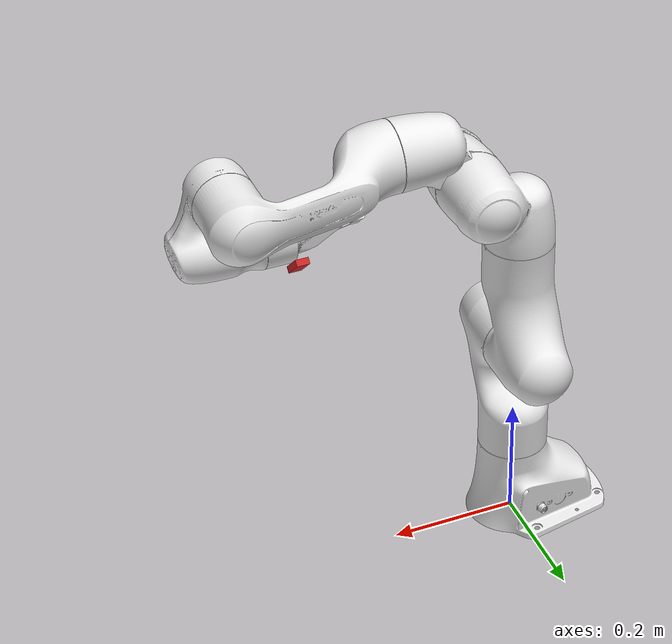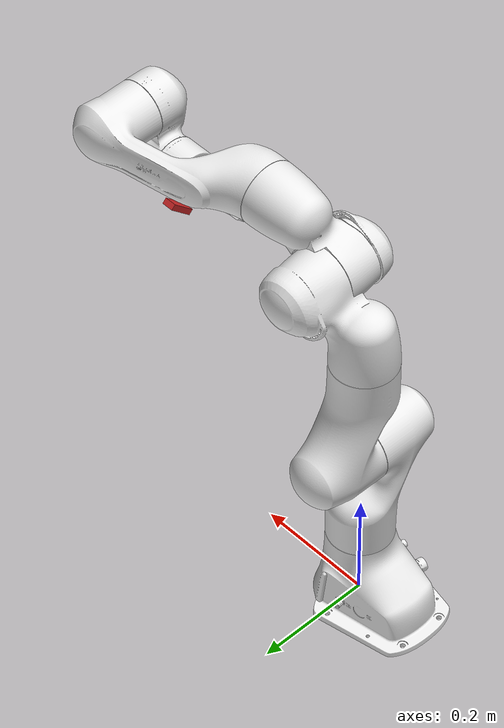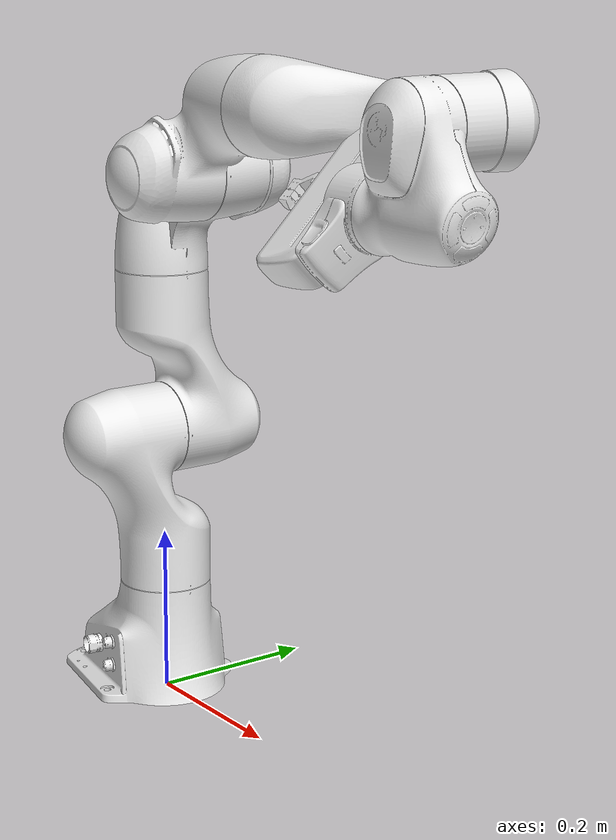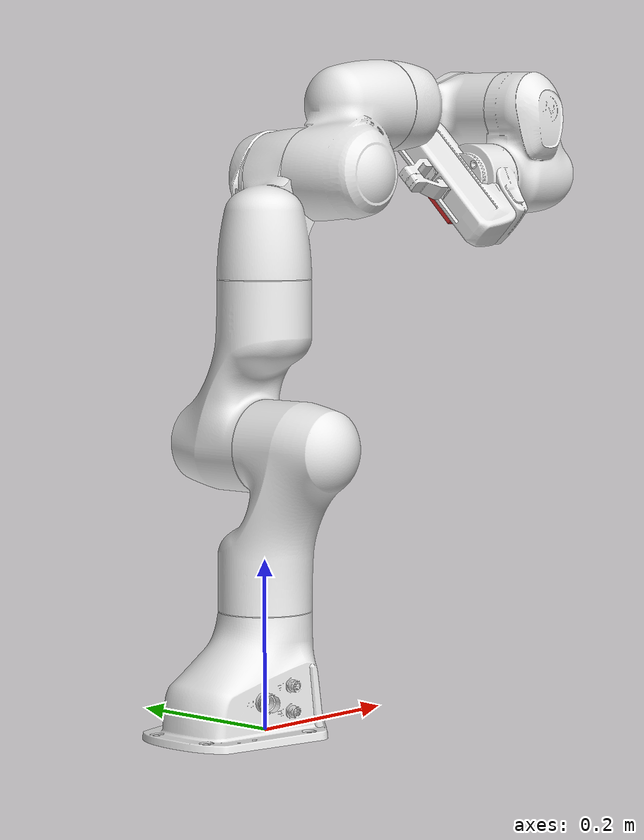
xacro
<?xml version='1.0' encoding='utf-8'?>
<robot xmlns:xacro="http://www.ros.org/wiki/xacro" name="panda">
  <xacro:arg name="arm_id" default="panda"/> <!-- Name of this panda -->
  <xacro:arg name="hand" default="true"/> <!-- Should a franka_gripper be mounted at the flange?" -->
  <xacro:arg name="camera" default="true"/> <!-- Should a franka_gripper be mounted at the flange?" -->

  <link name="world"/>

  <xacro:include filename="$(find franka_gazebo)/urdf/panda_arm.xacro"/>
  <xacro:panda_arm arm_id="$(arg arm_id)" safety_distance="0.03" connected_to="world" description_pkg="franka_gazebo"/>

  <xacro:if value="$(arg hand)">
    <xacro:include filename="$(find franka_gazebo)/urdf/hand.xacro"/>
    <xacro:hand ns="$(arg arm_id)" rpy="0 0 ${-pi/4}" connected_to="$(arg arm_id)_link8" safety_distance="0.03" description_pkg="franka_gazebo"/>
  </xacro:if>

  <xacro:include filename="$(find franka_gazebo)/urdf/panda_arm.gazebo_ros2_control.xacro"/>
  <xacro:panda_arm_gazebo_ros2_control ns="$(arg arm_id)" hand="$(arg hand)" camera="$(arg camera)"/>

</robot>

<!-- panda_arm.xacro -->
<robot xmlns:xacro="http://www.ros.org/wiki/xacro" name="panda">
  <!-- safety_distance: Minimum safety distance in [m] by which the collision volumes are expanded and which is enforced during robot motions -->
  <!-- arm_id: Namespace of the panda arm. Serves to differentiate between arms in case of multiple instances. -->
  <xacro:macro name="panda_arm" params="arm_id:='panda' description_pkg:='franka_description' connected_to:='' xyz:='0 0 0' rpy:='0 0 0' safety_distance:=0">
    <xacro:unless value="${not connected_to}">
      <joint name="${arm_id}_joint_${connected_to}" type="fixed">
        <parent link="${connected_to}"/>
        <child link="${arm_id}_link0"/>
        <origin rpy="${rpy}" xyz="${xyz}"/>
      </joint>
    </xacro:unless>

    <!-- for simulation -->
    <xacro:property name="joint_damping" value="5.0"/>
    <!-- end for simulation -->

    <link name="${arm_id}_link0">
      <visual>
        <geometry>
          <mesh filename="package://${description_pkg}/meshes/visual/link0.dae"/>
        </geometry>
      </visual>
      <collision>
        <geometry>
          <mesh filename="package://${description_pkg}/meshes/collision/link0.stl"/>
        </geometry>
      </collision>
      <!--for simulation -->
      <inertial>
        <origin xyz="-0.025566 -2.87883e-05 0.057332" rpy="0 0 0"/>
        <mass value="0.2814271300104062"/>
        <inertia ixx="0.0001" ixy="0.000"  ixz="0.000"
         iyy="0.0001" iyz="0.000"
         izz="0.0001" />
        <!--inertia ixx="0.0075390636364814695" iyy="0.010508017427382959" izz="0.009864933638708275" ixy="-1.5053124574783335e-05" ixz="-0.0012144328835738973" iyz="1.0434803501032979e-05"/-->
      </inertial>
      <!--for simulation -->
    </link>

    <link name="${arm_id}_link1">
      <visual>
        <geometry>
          <mesh filename="package://${description_pkg}/meshes/visual/link1.dae"/>
        </geometry>
      </visual>
      <collision>
        <geometry>
          <mesh filename="package://${description_pkg}/meshes/collision/link1.stl"/>
        </geometry>
      </collision>
      <!-- for simulation -->
      <inertial>
        <origin xyz="-3.72212e-09 -0.0324958 -0.0675818" rpy="0 0 0"/>
        <mass value="0.26433170427227215"/>
        <inertia ixx="0.0001" ixy="0.000"  ixz="0.000"
         iyy="0.0001" iyz="0.000"
         izz="0.0001" />
        <!--inertia ixx="0.017405076982879724" iyy="0.015352077935781732" izz="0.005987891663073857" ixy="-8.687986369621078e-09" ixz="1.6277819062920423e-08" iyz="0.004510855959102245"/-->
      </inertial>
      <!-- end for simulation -->
    </link>

    <joint name="${arm_id}_joint1" type="revolute">
      <safety_controller k_position="100.0" k_velocity="40.0" soft_lower_limit="-2.8973" soft_upper_limit="2.8973"/>
      <origin rpy="0 0 0" xyz="0 0 0.333"/>
      <parent link="${arm_id}_link0"/>
      <child link="${arm_id}_link1"/>
      <axis xyz="0 0 1"/>
      <limit effort="87" lower="-2.8973" upper="2.8973" velocity="2.1750"/>
      <!-- for simulation -->
      <dynamics damping="${joint_damping}" friction="0.546"/>
      <!-- end for simulation -->
    </joint>

    <link name="${arm_id}_link2">
      <visual>
        <geometry>
          <mesh filename="package://${description_pkg}/meshes/visual/link2.dae"/>
        </geometry>
      </visual>
      <collision>
        <geometry>
          <mesh filename="package://${description_pkg}/meshes/collision/link2.stl"/>
        </geometry>
      </collision>
      <!-- for simulation -->
      <inertial>
        <origin xyz="3.17833e-07 -0.06861 0.0322285" rpy="0 0 0"/>
        <mass value="0.26652755331661186"/>
        <inertia ixx="0.0001" ixy="0.000"  ixz="0.000"
         iyy="0.0001" iyz="0.000"
         izz="0.0001" />
        <!--inertia ixx="0.01778694005635383" iyy="0.006044133867952844" izz="0.01571095500455695" ixy="8.70635625879119e-08" ixz="3.752072058394008e-08" iyz="-0.004599490295490376"/-->
      </inertial>
      <!-- end for simulation -->
    </link>

    <joint name="${arm_id}_joint2" type="revolute">
      <safety_controller k_position="100.0" k_velocity="40.0" soft_lower_limit="-1.7628" soft_upper_limit="1.7628"/>
      <origin rpy="${-pi/2} 0 0" xyz="0 0 0"/>
      <parent link="${arm_id}_link1"/>
      <child link="${arm_id}_link2"/>
      <axis xyz="0 0 1"/>
      <limit effort="87" lower="-1.7628" upper="1.7628" velocity="2.1750"/>
      <!-- for simulation -->
      <dynamics damping="${joint_damping}" friction="0.87224"/>
      <!-- end for simulation -->
    </joint>

    <link name="${arm_id}_link3">
      <visual>
        <geometry>
          <mesh filename="package://${description_pkg}/meshes/visual/link3.dae"/>
        </geometry>
      </visual>
      <collision>
        <geometry>
          <mesh filename="package://${description_pkg}/meshes/collision/link3.stl"/>
        </geometry>
      </collision>
      <!-- for simulation -->
      <inertial>
        <origin xyz="0.0469893 0.0316374 -0.031704" rpy="0 0 0"/>
        <mass value="0.23293714829045733"/>
        <inertia ixx="0.0001" ixy="0.000"  ixz="0.000"
         iyy="0.0001" iyz="0.000"
         izz="0.0001" />
        <!--inertia ixx="0.0075496764161139766" iyy="0.009680676080191398" izz="0.007944557422008086" ixy="-0.0024320464513492225" ixz="-0.003250815048103007" iyz="-0.0021316282421730694"/-->
      </inertial>
      <!-- end for simulation -->
    </link>

    <joint name="${arm_id}_joint3" type="revolute">
      <safety_controller k_position="100.0" k_velocity="40.0" soft_lower_limit="-2.8973" soft_upper_limit="2.8973"/>
      <origin rpy="${pi/2} 0 0" xyz="0 -0.316 0"/>
      <parent link="${arm_id}_link2"/>
      <child link="${arm_id}_link3"/>
      <axis xyz="0 0 1"/>
      <limit effort="87" lower="-2.8973" upper="2.8973" velocity="2.1750"/>
      <!-- for simulation -->
      <dynamics damping="${joint_damping}" friction="0.6406"/>
      <!-- end for simulation -->
    </joint>

    <link name="${arm_id}_link4">
      <visual>
        <geometry>
          <mesh filename="package://${description_pkg}/meshes/visual/link4.dae"/>
        </geometry>
      </visual>
      <collision>
        <geometry>
          <mesh filename="package://${description_pkg}/meshes/collision/link4.stl"/>
        </geometry>
      </collision>
      <!-- for simulation -->
      <inertial>
        <origin xyz="-0.0360505 0.0337069 0.0319019" rpy="0 0 0"/>
        <mass value="0.23104763646281508"/>
        <inertia ixx="0.0001" ixy="0.000"  ixz="0.000"
         iyy="0.0001" iyz="0.000"
         izz="0.0001" />
        <!--inertia ixx="0.007764568814864828" iyy="0.008015776929980149" izz="0.009955882308071066" ixy="0.003371475204045935" ixz="-0.002343621113168248" iyz="0.0022917526161470624"/-->
      </inertial>
      <!-- end for simulation -->
    </link>

    <joint name="${arm_id}_joint4" type="revolute">
      <safety_controller k_position="100.0" k_velocity="40.0" soft_lower_limit="-3.0718" soft_upper_limit="-0.0698"/>
      <origin rpy="${pi/2} 0 0" xyz="0.0825 0 0"/>
      <parent link="${arm_id}_link3"/>
      <child link="${arm_id}_link4"/>
      <axis xyz="0 0 1"/>
      <limit effort="87" lower="-3.0718" upper="-0.0698" velocity="2.1750"/>
      <!-- for simulation -->
      <dynamics damping="${joint_damping}" friction="1.2794"/>
      <!-- end for simulation -->
    </joint>

    <link name="${arm_id}_link5">
      <visual>
        <geometry>
          <mesh filename="package://${description_pkg}/meshes/visual/link5.dae"/>
        </geometry>
      </visual>
      <collision>
        <geometry>
          <mesh filename="package://${description_pkg}/meshes/collision/link5.stl"/>
        </geometry>
      </collision>
      <!-- for simulation -->
      <inertial>
        <origin xyz="-6.12525e-06 0.0610427 -0.104176" rpy="0 0 0"/>
        <mass value="0.26226426154892004"/>
        <inertia ixx="0.0001" ixy="0.000"  ixz="0.000"
         iyy="0.0001" iyz="0.000"
         izz="0.0001" />
        <!--inertia ixx="0.029070538014399377" iyy="0.027638529986528795" izz="0.004251111234400737" ixy="6.208738268725568e-07" ixz="-1.0059151925023392e-05" iyz="-0.007424306477850814"/-->
      </inertial>
      <!-- end for simulation -->
    </link>

    <joint name="${arm_id}_joint5" type="revolute">
      <safety_controller k_position="100.0" k_velocity="40.0" soft_lower_limit="-2.8973" soft_upper_limit="2.8973"/>
      <origin rpy="${-pi/2} 0 0" xyz="-0.0825 0.384 0"/>
      <parent link="${arm_id}_link4"/>
      <child link="${arm_id}_link5"/>
      <axis xyz="0 0 1"/>
      <limit effort="12" lower="-2.8973" upper="2.8973" velocity="2.6100"/>
      <!-- for simulation -->
      <dynamics damping="3.0" friction="0.839"/>
      <!-- end for simulation -->
    </joint>

    <link name="${arm_id}_link6">
      <visual>
        <geometry>
          <mesh filename="package://${description_pkg}/meshes/visual/link6.dae"/>
        </geometry>
      </visual>
      <collision>
        <geometry>
          <mesh filename="package://${description_pkg}/meshes/collision/link6.stl"/>
        </geometry>
      </collision>
      <!-- for simulation -->
      <inertial>
        <origin xyz="0.051051 0.00910797 0.0106343" rpy="0 0 0"/>
        <mass value="0.15025804886626795"/>
        <inertia ixx="0.0001" ixy="0.000"  ixz="0.000"
         iyy="0.0001" iyz="0.000"
         izz="0.0001" />
        <!--inertia ixx="0.002940555801469018" iyy="0.00392105201248677" izz="0.0054115603870960195" ixy="-0.00042391108351381507" ixz="0.000610007735338717" iyz="0.00012647545430836214"/-->
      </inertial>
      <!-- end for simulation -->
    </link>

    <joint name="${arm_id}_joint6" type="revolute">
      <safety_controller k_position="100.0" k_velocity="40.0" soft_lower_limit="-0.0175" soft_upper_limit="3.7525"/>
      <origin rpy="${pi/2} 0 0" xyz="0 0 0"/>
      <parent link="${arm_id}_link5"/>
      <child link="${arm_id}_link6"/>
      <axis xyz="0 0 1"/>
      <limit effort="12" lower="-0.0175" upper="3.7525" velocity="2.6100"/>
      <!-- for simulation -->
      <dynamics damping="3.0" friction="0.303"/>
      <!-- end for simulation -->
    </joint>

    <link name="${arm_id}_link7">
      <visual>
        <geometry>
          <mesh filename="package://${description_pkg}/meshes/visual/link7.dae"/>
        </geometry>
      </visual>
      <collision>
        <geometry>
          <mesh filename="package://${description_pkg}/meshes/collision/link7.stl"/>
        </geometry>
      </collision>
      <!-- for simulation -->
      <inertial>
        <origin xyz="0.0109695 0.0107965 0.0650412" rpy="0 0 0"/>
        <mass value="0.05237668134788256"/>
        <!--inertia ixx="0.00001" ixy="0.000"  ixz="0.000"
         iyy="0.00001" iyz="0.000"
         izz="0.00001" /-->
        <inertia ixx="0.0008621467959726535" iyy="0.0008613100184801048" izz="0.0009961139396618219" ixy="-0.000011871071570425467" ixz="3.866602604509339e-06" iyz="-9.057841649422724e-06"/>
      </inertial>
      <!-- end for simulation -->
    </link>

    <joint name="${arm_id}_joint7" type="revolute">
      <!--safety_controller k_position="100.0" k_velocity="40.0" soft_lower_limit="-2.8973" soft_upper_limit="2.8973"/-->
      <origin rpy="${pi/2} 0 0" xyz="0.088 0 0"/>
      <parent link="${arm_id}_link6"/>
      <child link="${arm_id}_link7"/>
      <axis xyz="0 0 1"/>
      <limit effort="12" lower="-2.8973" upper="2.8973" velocity="2.6100"/>
      <!-- for simulation -->
      <dynamics damping="3.0" friction="0.05649"/>
      <!-- end for simulation -->
    </joint>

    <link name="${arm_id}_link8">
      <!-- for simulation -->
      <inertial>
        <origin xyz="0.0 0.0 0.0" rpy="0 0 0"/>
        <mass value="0.001"/>
        <inertia ixx="0.00001" ixy="0.000"  ixz="0.000"
         iyy="0.00001" iyz="0.000"
         izz="0.00001" />
      </inertial>
    </link>
    <joint name="${arm_id}_joint8" type="fixed">
      <origin rpy="0 0 0" xyz="0 0 0.0"/>
      <parent link="${arm_id}_link7"/>
      <child link="${arm_id}_link8"/>
    </joint>

  </xacro:macro>
</robot>

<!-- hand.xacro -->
<robot xmlns:xacro="http://www.ros.org/wiki/xacro" name="hand">
  <!-- safety_distance: Minimum safety distance in [m] by which the collision volumes are expanded and which is enforced during robot motions -->
  <xacro:macro name="hand" params="connected_to:='' ns:='' description_pkg:='franka_description' rpy:='0 0 0' xyz:='0 0 0.1' safety_distance:=0">
    <xacro:unless value="${connected_to == ''}">
      <joint name="${ns}_hand_joint" type="fixed">
        <parent link="${connected_to}"/>
        <child link="${ns}_hand"/>
        <origin xyz="${xyz}" rpy="${rpy}"/>
      </joint>
    </xacro:unless>
    <link name="${ns}_hand">
      <visual>
        <geometry>
          <mesh filename="package://${description_pkg}/meshes/visual/hand.dae"/>
        </geometry>
      </visual>
      <collision>
        <geometry>
          <mesh filename="package://${description_pkg}/meshes/collision/hand.stl"/>
        </geometry>
      </collision>
      <inertial>
        <origin xyz="-6.7624e-06 0.00152435 0.0275912" rpy="0 0 0"/>
        <mass value="0.14060765127978503"/>
        <inertia ixx="0.0001" ixy="0.000"  ixz="0.000"
         iyy="0.0001" iyz="0.000"
         izz="0.0001" />
        <!--inertia ixx="0.0005365450414352072" iyy="7.70511954783727e-05" izz="0.0004938176882694914" ixy="1.7911952957732454e-08" ixz="-2.320071910601251e-08" iyz="4.681149945315967e-08"/-->
      </inertial>
    </link>
    <!-- Define the hand_tcp frame -->
    <link name="${ns}_hand_tcp"/>
    <joint name="${ns}_hand_tcp_joint" type="fixed">
      <origin xyz="0 0 0.1034" rpy="0 0 0"/>
      <parent link="${ns}_hand"/>
      <child link="${ns}_hand_tcp"/>
    </joint>
    <link name="${ns}_leftfinger">
      <visual>
        <geometry>
          <mesh filename="package://${description_pkg}/meshes/visual/finger.dae"/>
        </geometry>
      </visual>
      <collision>
        <geometry>
          <mesh filename="package://${description_pkg}/meshes/collision/finger.stl"/>
        </geometry>
      </collision>
      <inertial>
        <origin xyz="-6.2561e-06 0.00227781 -0.0277116" rpy="0 0 0"/>
        <mass value="0.2238453537819424"/>
        <inertia ixx="6.74804167363695e-05" iyy="6.627189221641395e-05" izz="1.550396267804825e-05" ixy="-4.1027443646025676e-09" ixz="1.8693673970152995e-08" iyz="1.1967548474390802e-05"/>
      </inertial>
    </link>
    <link name="${ns}_rightfinger">
      <visual>
        <origin xyz="0 0 0" rpy="0 0 ${pi}"/>
        <geometry>
          <mesh filename="package://${description_pkg}/meshes/visual/finger.dae"/>
        </geometry>
      </visual>
      <collision>
        <origin xyz="0 0 0" rpy="0 0 ${pi}"/>
        <geometry>
          <mesh filename="package://${description_pkg}/meshes/collision/finger.stl"/>
        </geometry>
      </collision>
      <inertial>
        <origin xyz="-6.2561e-06 0.00227781 -0.0277116" rpy="0 0 0"/>
        <mass value="0.2238453537819424"/>
        <inertia ixx="6.74804167363695e-05" iyy="6.627189221641395e-05" izz="1.550396267804825e-05" ixy="-4.1027443646025676e-09" ixz="1.8693673970152995e-08" iyz="1.1967548474390802e-05"/>
      </inertial>
    </link>
    <joint name="${ns}_finger_joint1" type="prismatic">
      <parent link="${ns}_hand"/>
      <child link="${ns}_leftfinger"/>
      <origin xyz="0 0 0.0584" rpy="0 0 0"/>
      <axis xyz="0 1 0"/>
      <limit effort="20" lower="0.0" upper="0.04" velocity="0.2"/>
      <dynamics damping="3.0" friction="0.546"/>
    </joint>
    <joint name="${ns}_finger_joint2" type="prismatic">
      <parent link="${ns}_hand"/>
      <child link="${ns}_rightfinger"/>
      <origin xyz="0 0 0.0584" rpy="0 0 0"/>
      <axis xyz="0 -1 0"/>
      <limit effort="20" lower="0.0" upper="0.04" velocity="0.2"/>
      <mimic joint="${ns}_finger_joint1"/>
      <dynamics damping="3.0" friction="0.546"/>
    </joint>
  </xacro:macro>
</robot>

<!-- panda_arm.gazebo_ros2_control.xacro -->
<robot xmlns:xacro="http://www.ros.org/wiki/xacro">

  <xacro:include filename="$(find franka_gazebo)/urdf/materials.xacro" />

  <xacro:macro name="panda_arm_gazebo_ros2_control" params="ns hand:='false' camera:='true'">
    <gazebo>
      <plugin filename="libgazebo_ros2_control.so" name="gazebo_ros2_control">
        <parameters>$(find franka_gazebo)/config/franka_controllers.yaml</parameters>
      </plugin>
    </gazebo>

    <!-- Links -->
    <xacro:macro name="configure_link" params="link_name">
    <gazebo reference="${link_name}">
      <material>Gazebo/White</material>
      <selfCollide>False</selfCollide>
    </gazebo>
    </xacro:macro>

    <xacro:configure_link link_name="${ns}_link0"/>
    <xacro:configure_link link_name="${ns}_link1"/>
    <xacro:configure_link link_name="${ns}_link2"/>
    <xacro:configure_link link_name="${ns}_link3"/>
    <xacro:configure_link link_name="${ns}_link4"/>
    <xacro:configure_link link_name="${ns}_link5"/>
    <xacro:configure_link link_name="${ns}_link6"/>
    <xacro:configure_link link_name="${ns}_link7"/>
    <!--xacro:configure_link link_name="${ns}_link8"/-->

    <xacro:macro name="configure_joint_ref" params="joint_name">
    <gazebo reference="${joint_name}">
      <implicitSpringDamper>True</implicitSpringDamper>
    </gazebo>
    </xacro:macro>

    <xacro:configure_joint_ref joint_name="${ns}_joint1"/>
    <xacro:configure_joint_ref joint_name="${ns}_joint2"/>
    <xacro:configure_joint_ref joint_name="${ns}_joint3"/>
    <xacro:configure_joint_ref joint_name="${ns}_joint4"/>
    <xacro:configure_joint_ref joint_name="${ns}_joint5"/>
    <xacro:configure_joint_ref joint_name="${ns}_joint6"/>
    <xacro:configure_joint_ref joint_name="${ns}_joint7"/>

    <xacro:if value="${hand}">
      <xacro:configure_link link_name="${ns}_hand"/>
      <xacro:configure_link link_name="${ns}_hand_tcp"/>
      <xacro:configure_link link_name="${ns}_leftfinger"/>
      <xacro:configure_link link_name="${ns}_rightfinger"/>
      <xacro:configure_joint_ref joint_name="${ns}_finger_joint1"/>
      <xacro:configure_joint_ref joint_name="${ns}_finger_joint2"/>
    </xacro:if>

    <ros2_control name="FrankaHardwareInterface" type="system">
      <hardware>
        <plugin>gazebo_ros2_control/GazeboSystem</plugin>
      </hardware>

      <xacro:macro name="configure_joint" params="joint_name initial_position min_vel max_vel">
        <joint name="${joint_name}">
          <command_interface name="effort"/>
          <command_interface name="velocity">
            <param name="min">${min_vel}</param>
            <param name="max">${max_vel}</param>
          </command_interface>
          <command_interface name="position"/>
          <state_interface name="position">
              <param name="initial_value">${initial_position}</param>
          </state_interface>
          <state_interface name="velocity"/>
          <state_interface name="effort"/>
        </joint>
      </xacro:macro>

      <xacro:configure_joint joint_name="${ns}_joint1" initial_position="0.0" min_vel="-2.175" max_vel="2.175"/>
      <xacro:configure_joint joint_name="${ns}_joint2" initial_position="${-pi/4}" min_vel="-2.175" max_vel="2.175"/>
      <xacro:configure_joint joint_name="${ns}_joint3" initial_position="0.0" min_vel="-2.175" max_vel="2.175"/>
      <xacro:configure_joint joint_name="${ns}_joint4" initial_position="${-3*pi/4}" min_vel="-2.175" max_vel="2.175"/>
      <xacro:configure_joint joint_name="${ns}_joint5" initial_position="0.0" min_vel="-2.6" max_vel="2.6"/>
      <xacro:configure_joint joint_name="${ns}_joint6" initial_position="${pi/2}" min_vel="-2.6" max_vel="2.6"/>
      <xacro:configure_joint joint_name="${ns}_joint7" initial_position="${pi/4}" min_vel="-2.6" max_vel="2.6"/>

      <xacro:if value="${hand}">
        <xacro:configure_joint joint_name="${ns}_finger_joint1" initial_position="0.0" min_vel="-1.0" max_vel="1.0"/>
        <xacro:configure_joint joint_name="${ns}_finger_joint2" initial_position="0.0" min_vel="-1.0" max_vel="1.0"/>
      </xacro:if>

    </ros2_control>

    <!--set up an RGB-D camera mounted at the end effector-->
    <xacro:if value="${hand}">
    <xacro:if value="${camera}">
      <link name="${ns}_camera_optical_frame"/>

      <link name="${ns}_camera_link">
        <visual>
          <geometry>
          <box size="0.02 0.05 0.01"/>
          </geometry>
        </visual>
        <!--for simulation -->
        <inertial>
          <origin xyz="0.0 0.0 0.0" rpy="0 0 0"/>
          <mass value="0.01"/>
          <inertia ixx="0.0001" ixy="0.000"  ixz="0.000"
           iyy="0.0001" iyz="0.000"
           izz="0.0001" />
          </inertial>
      </link>

      <gazebo reference="${ns}_camera_link">
        <material>Gazebo/Red</material>
        <selfCollide>False</selfCollide>
        <sensor type="depth" name="camera">
          <update_rate>30</update_rate>
          <visualize>false</visualize>
          <camera>
            <horizontal_fov>1.92</horizontal_fov>
            <image>
              <width>640</width>
              <height>480</height>
              <format>B8G8R8</format>
            </image>
            <depth_camera>
            </depth_camera>
            <clip>
              <near>0.02</near>
              <far>3</far>
            </clip>
            <noise>
              <type>gaussian</type>
              <mean>0.0</mean>
              <stddev>0.007</stddev>
            </noise>
          </camera>
          <plugin name="camera_controller" filename="libgazebo_ros_camera.so">
            <ros>
              <namespace>${ns}</namespace>

            </ros>

            <frame_name>${ns}_camera_optical_frame</frame_name>

            <min_depth>0.1</min_depth>
            <max_depth>5</max_depth>
          </plugin>
        </sensor>
      </gazebo>
      <joint name="${ns}_camera_fixed_joint" type="fixed">
        <origin rpy="0 ${-pi/2} 0" xyz="0.05 0.0 0.0"/>
        <parent link="${ns}_hand"/>
        <child link="${ns}_camera_link"/>
      </joint>
      <joint name="${ns}_camera_optical_joint" type="fixed">
        <origin rpy="${-pi/2} 0 ${-pi/2}" xyz="0.0 0.0 0.0"/>
        <parent link="${ns}_camera_link"/>
        <child link="${ns}_camera_optical_frame"/>
      </joint>
    </xacro:if>
    </xacro:if>
  </xacro:macro>
</robot>
